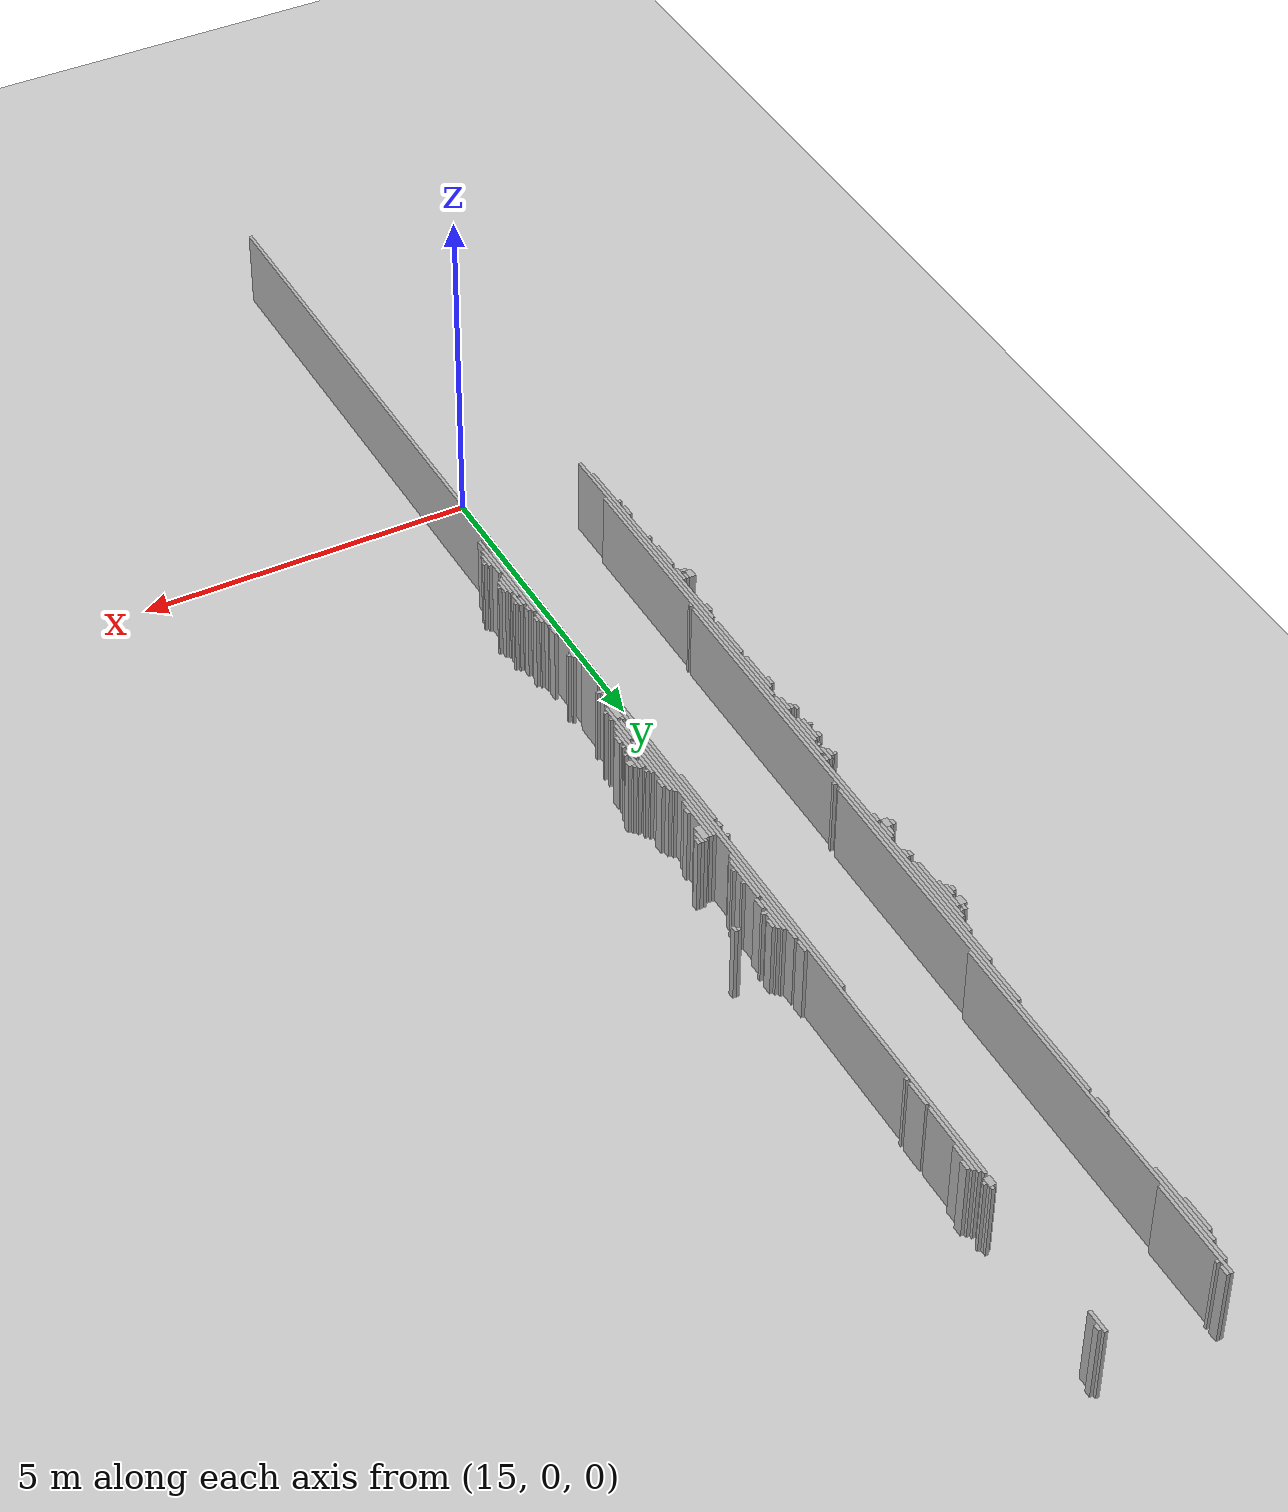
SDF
<sdf version="1.6">
 <world name="d10_floor">
  <include><uri>model://sun</uri></include>
  <include><uri>model://ground_plane</uri></include>
  <model name="d10_walls">
   <static>true</static>
   <link name="w1123">
    <pose>15.600 2.905 0.60 0 0 0</pose>
    <collision name="c"><geometry><box><size>0.050 18.000 1.20</size></box></geometry></collision>
    <visual name="v">
     <geometry><box><size>0.050 18.000 1.20</size></box></geometry>
     <material><ambient>0.6 0.6 0.6 1</ambient><diffuse>0.7 0.7 0.7 1</diffuse></material>
    </visual>
   </link>
   <link name="w1691">
    <pose>13.700 4.005 0.60 0 0 0</pose>
    <collision name="c"><geometry><box><size>0.050 5.600 1.20</size></box></geometry></collision>
    <visual name="v">
     <geometry><box><size>0.050 5.600 1.20</size></box></geometry>
     <material><ambient>0.6 0.6 0.6 1</ambient><diffuse>0.7 0.7 0.7 1</diffuse></material>
    </visual>
   </link>
   <link name="w1783">
    <pose>13.650 3.280 0.60 0 0 0</pose>
    <collision name="c"><geometry><box><size>0.050 3.550 1.20</size></box></geometry></collision>
    <visual name="v">
     <geometry><box><size>0.050 3.550 1.20</size></box></geometry>
     <material><ambient>0.6 0.6 0.6 1</ambient><diffuse>0.7 0.7 0.7 1</diffuse></material>
    </visual>
   </link>
   <link name="w1854">
    <pose>13.750 7.205 0.60 0 0 0</pose>
    <collision name="c"><geometry><box><size>0.050 10.300 1.20</size></box></geometry></collision>
    <visual name="v">
     <geometry><box><size>0.050 10.300 1.20</size></box></geometry>
     <material><ambient>0.6 0.6 0.6 1</ambient><diffuse>0.7 0.7 0.7 1</diffuse></material>
    </visual>
   </link>
   <link name="w1860">
    <pose>15.750 2.955 0.60 0 0 0</pose>
    <collision name="c"><geometry><box><size>0.050 1.700 1.20</size></box></geometry></collision>
    <visual name="v">
     <geometry><box><size>0.050 1.700 1.20</size></box></geometry>
     <material><ambient>0.6 0.6 0.6 1</ambient><diffuse>0.7 0.7 0.7 1</diffuse></material>
    </visual>
   </link>
   <link name="w1869">
    <pose>13.600 2.230 0.60 0 0 0</pose>
    <collision name="c"><geometry><box><size>0.050 0.050 1.20</size></box></geometry></collision>
    <visual name="v">
     <geometry><box><size>0.050 0.050 1.20</size></box></geometry>
     <material><ambient>0.6 0.6 0.6 1</ambient><diffuse>0.7 0.7 0.7 1</diffuse></material>
    </visual>
   </link>
   <link name="w1872">
    <pose>15.800 2.580 0.60 0 0 0</pose>
    <collision name="c"><geometry><box><size>0.050 0.550 1.20</size></box></geometry></collision>
    <visual name="v">
     <geometry><box><size>0.050 0.550 1.20</size></box></geometry>
     <material><ambient>0.6 0.6 0.6 1</ambient><diffuse>0.7 0.7 0.7 1</diffuse></material>
    </visual>
   </link>
   <link name="w1873">
    <pose>13.600 2.455 0.60 0 0 0</pose>
    <collision name="c"><geometry><box><size>0.050 0.200 1.20</size></box></geometry></collision>
    <visual name="v">
     <geometry><box><size>0.050 0.200 1.20</size></box></geometry>
     <material><ambient>0.6 0.6 0.6 1</ambient><diffuse>0.7 0.7 0.7 1</diffuse></material>
    </visual>
   </link>
   <link name="w1874">
    <pose>15.700 3.280 0.60 0 0 0</pose>
    <collision name="c"><geometry><box><size>0.050 1.750 1.20</size></box></geometry></collision>
    <visual name="v">
     <geometry><box><size>0.050 1.750 1.20</size></box></geometry>
     <material><ambient>0.6 0.6 0.6 1</ambient><diffuse>0.7 0.7 0.7 1</diffuse></material>
    </visual>
   </link>
   <link name="w1875">
    <pose>15.850 2.530 0.60 0 0 0</pose>
    <collision name="c"><geometry><box><size>0.050 0.250 1.20</size></box></geometry></collision>
    <visual name="v">
     <geometry><box><size>0.050 0.250 1.20</size></box></geometry>
     <material><ambient>0.6 0.6 0.6 1</ambient><diffuse>0.7 0.7 0.7 1</diffuse></material>
    </visual>
   </link>
   <link name="w1877">
    <pose>15.900 2.580 0.60 0 0 0</pose>
    <collision name="c"><geometry><box><size>0.050 0.050 1.20</size></box></geometry></collision>
    <visual name="v">
     <geometry><box><size>0.050 0.050 1.20</size></box></geometry>
     <material><ambient>0.6 0.6 0.6 1</ambient><diffuse>0.7 0.7 0.7 1</diffuse></material>
    </visual>
   </link>
   <link name="w1881">
    <pose>15.800 3.155 0.60 0 0 0</pose>
    <collision name="c"><geometry><box><size>0.050 0.500 1.20</size></box></geometry></collision>
    <visual name="v">
     <geometry><box><size>0.050 0.500 1.20</size></box></geometry>
     <material><ambient>0.6 0.6 0.6 1</ambient><diffuse>0.7 0.7 0.7 1</diffuse></material>
    </visual>
   </link>
   <link name="w1882">
    <pose>15.850 3.130 0.60 0 0 0</pose>
    <collision name="c"><geometry><box><size>0.050 0.350 1.20</size></box></geometry></collision>
    <visual name="v">
     <geometry><box><size>0.050 0.350 1.20</size></box></geometry>
     <material><ambient>0.6 0.6 0.6 1</ambient><diffuse>0.7 0.7 0.7 1</diffuse></material>
    </visual>
   </link>
   <link name="w1883">
    <pose>15.900 3.130 0.60 0 0 0</pose>
    <collision name="c"><geometry><box><size>0.050 0.250 1.20</size></box></geometry></collision>
    <visual name="v">
     <geometry><box><size>0.050 0.250 1.20</size></box></geometry>
     <material><ambient>0.6 0.6 0.6 1</ambient><diffuse>0.7 0.7 0.7 1</diffuse></material>
    </visual>
   </link>
   <link name="w1884">
    <pose>13.600 3.130 0.60 0 0 0</pose>
    <collision name="c"><geometry><box><size>0.050 0.050 1.20</size></box></geometry></collision>
    <visual name="v">
     <geometry><box><size>0.050 0.050 1.20</size></box></geometry>
     <material><ambient>0.6 0.6 0.6 1</ambient><diffuse>0.7 0.7 0.7 1</diffuse></material>
    </visual>
   </link>
   <link name="w1885">
    <pose>15.950 3.130 0.60 0 0 0</pose>
    <collision name="c"><geometry><box><size>0.050 0.050 1.20</size></box></geometry></collision>
    <visual name="v">
     <geometry><box><size>0.050 0.050 1.20</size></box></geometry>
     <material><ambient>0.6 0.6 0.6 1</ambient><diffuse>0.7 0.7 0.7 1</diffuse></material>
    </visual>
   </link>
   <link name="w1888">
    <pose>13.600 3.580 0.60 0 0 0</pose>
    <collision name="c"><geometry><box><size>0.050 0.450 1.20</size></box></geometry></collision>
    <visual name="v">
     <geometry><box><size>0.050 0.450 1.20</size></box></geometry>
     <material><ambient>0.6 0.6 0.6 1</ambient><diffuse>0.7 0.7 0.7 1</diffuse></material>
    </visual>
   </link>
   <link name="w1889">
    <pose>15.850 3.480 0.60 0 0 0</pose>
    <collision name="c"><geometry><box><size>0.050 0.250 1.20</size></box></geometry></collision>
    <visual name="v">
     <geometry><box><size>0.050 0.250 1.20</size></box></geometry>
     <material><ambient>0.6 0.6 0.6 1</ambient><diffuse>0.7 0.7 0.7 1</diffuse></material>
    </visual>
   </link>
   <link name="w1890">
    <pose>15.800 3.530 0.60 0 0 0</pose>
    <collision name="c"><geometry><box><size>0.050 0.150 1.20</size></box></geometry></collision>
    <visual name="v">
     <geometry><box><size>0.050 0.150 1.20</size></box></geometry>
     <material><ambient>0.6 0.6 0.6 1</ambient><diffuse>0.7 0.7 0.7 1</diffuse></material>
    </visual>
   </link>
   <link name="w1891">
    <pose>15.900 3.530 0.60 0 0 0</pose>
    <collision name="c"><geometry><box><size>0.050 0.050 1.20</size></box></geometry></collision>
    <visual name="v">
     <geometry><box><size>0.050 0.050 1.20</size></box></geometry>
     <material><ambient>0.6 0.6 0.6 1</ambient><diffuse>0.7 0.7 0.7 1</diffuse></material>
    </visual>
   </link>
   <link name="w1894">
    <pose>15.800 3.705 0.60 0 0 0</pose>
    <collision name="c"><geometry><box><size>0.050 0.100 1.20</size></box></geometry></collision>
    <visual name="v">
     <geometry><box><size>0.050 0.100 1.20</size></box></geometry>
     <material><ambient>0.6 0.6 0.6 1</ambient><diffuse>0.7 0.7 0.7 1</diffuse></material>
    </visual>
   </link>
   <link name="w1898">
    <pose>15.750 3.955 0.60 0 0 0</pose>
    <collision name="c"><geometry><box><size>0.050 0.200 1.20</size></box></geometry></collision>
    <visual name="v">
     <geometry><box><size>0.050 0.200 1.20</size></box></geometry>
     <material><ambient>0.6 0.6 0.6 1</ambient><diffuse>0.7 0.7 0.7 1</diffuse></material>
    </visual>
   </link>
   <link name="w1899">
    <pose>13.600 4.030 0.60 0 0 0</pose>
    <collision name="c"><geometry><box><size>0.050 0.250 1.20</size></box></geometry></collision>
    <visual name="v">
     <geometry><box><size>0.050 0.250 1.20</size></box></geometry>
     <material><ambient>0.6 0.6 0.6 1</ambient><diffuse>0.7 0.7 0.7 1</diffuse></material>
    </visual>
   </link>
   <link name="w1900">
    <pose>15.800 3.955 0.60 0 0 0</pose>
    <collision name="c"><geometry><box><size>0.050 0.100 1.20</size></box></geometry></collision>
    <visual name="v">
     <geometry><box><size>0.050 0.100 1.20</size></box></geometry>
     <material><ambient>0.6 0.6 0.6 1</ambient><diffuse>0.7 0.7 0.7 1</diffuse></material>
    </visual>
   </link>
   <link name="w1901">
    <pose>13.525 3.980 0.60 0 0 0</pose>
    <collision name="c"><geometry><box><size>0.100 0.050 1.20</size></box></geometry></collision>
    <visual name="v">
     <geometry><box><size>0.100 0.050 1.20</size></box></geometry>
     <material><ambient>0.6 0.6 0.6 1</ambient><diffuse>0.7 0.7 0.7 1</diffuse></material>
    </visual>
   </link>
   <link name="w1902">
    <pose>13.475 4.080 0.60 0 0 0</pose>
    <collision name="c"><geometry><box><size>0.100 0.150 1.20</size></box></geometry></collision>
    <visual name="v">
     <geometry><box><size>0.100 0.150 1.20</size></box></geometry>
     <material><ambient>0.6 0.6 0.6 1</ambient><diffuse>0.7 0.7 0.7 1</diffuse></material>
    </visual>
   </link>
   <link name="w1903">
    <pose>13.550 4.105 0.60 0 0 0</pose>
    <collision name="c"><geometry><box><size>0.050 0.100 1.20</size></box></geometry></collision>
    <visual name="v">
     <geometry><box><size>0.050 0.100 1.20</size></box></geometry>
     <material><ambient>0.6 0.6 0.6 1</ambient><diffuse>0.7 0.7 0.7 1</diffuse></material>
    </visual>
   </link>
   <link name="w1908">
    <pose>15.700 4.280 0.60 0 0 0</pose>
    <collision name="c"><geometry><box><size>0.050 0.150 1.20</size></box></geometry></collision>
    <visual name="v">
     <geometry><box><size>0.050 0.150 1.20</size></box></geometry>
     <material><ambient>0.6 0.6 0.6 1</ambient><diffuse>0.7 0.7 0.7 1</diffuse></material>
    </visual>
   </link>
   <link name="w1914">
    <pose>13.800 4.680 0.60 0 0 0</pose>
    <collision name="c"><geometry><box><size>0.050 0.050 1.20</size></box></geometry></collision>
    <visual name="v">
     <geometry><box><size>0.050 0.050 1.20</size></box></geometry>
     <material><ambient>0.6 0.6 0.6 1</ambient><diffuse>0.7 0.7 0.7 1</diffuse></material>
    </visual>
   </link>
   <link name="w1918">
    <pose>13.600 4.830 0.60 0 0 0</pose>
    <collision name="c"><geometry><box><size>0.050 0.150 1.20</size></box></geometry></collision>
    <visual name="v">
     <geometry><box><size>0.050 0.150 1.20</size></box></geometry>
     <material><ambient>0.6 0.6 0.6 1</ambient><diffuse>0.7 0.7 0.7 1</diffuse></material>
    </visual>
   </link>
   <link name="w1919">
    <pose>13.800 8.930 0.60 0 0 0</pose>
    <collision name="c"><geometry><box><size>0.050 8.350 1.20</size></box></geometry></collision>
    <visual name="v">
     <geometry><box><size>0.050 8.350 1.20</size></box></geometry>
     <material><ambient>0.6 0.6 0.6 1</ambient><diffuse>0.7 0.7 0.7 1</diffuse></material>
    </visual>
   </link>
   <link name="w1920">
    <pose>15.700 4.830 0.60 0 0 0</pose>
    <collision name="c"><geometry><box><size>0.050 0.150 1.20</size></box></geometry></collision>
    <visual name="v">
     <geometry><box><size>0.050 0.150 1.20</size></box></geometry>
     <material><ambient>0.6 0.6 0.6 1</ambient><diffuse>0.7 0.7 0.7 1</diffuse></material>
    </visual>
   </link>
   <link name="w1922">
    <pose>15.750 4.830 0.60 0 0 0</pose>
    <collision name="c"><geometry><box><size>0.050 0.050 1.20</size></box></geometry></collision>
    <visual name="v">
     <geometry><box><size>0.050 0.050 1.20</size></box></geometry>
     <material><ambient>0.6 0.6 0.6 1</ambient><diffuse>0.7 0.7 0.7 1</diffuse></material>
    </visual>
   </link>
   <link name="w1924">
    <pose>15.650 5.280 0.60 0 0 0</pose>
    <collision name="c"><geometry><box><size>0.050 0.450 1.20</size></box></geometry></collision>
    <visual name="v">
     <geometry><box><size>0.050 0.450 1.20</size></box></geometry>
     <material><ambient>0.6 0.6 0.6 1</ambient><diffuse>0.7 0.7 0.7 1</diffuse></material>
    </visual>
   </link>
   <link name="w1927">
    <pose>13.650 5.505 0.60 0 0 0</pose>
    <collision name="c"><geometry><box><size>0.050 0.700 1.20</size></box></geometry></collision>
    <visual name="v">
     <geometry><box><size>0.050 0.700 1.20</size></box></geometry>
     <material><ambient>0.6 0.6 0.6 1</ambient><diffuse>0.7 0.7 0.7 1</diffuse></material>
    </visual>
   </link>
   <link name="w1933">
    <pose>15.650 10.430 0.60 0 0 0</pose>
    <collision name="c"><geometry><box><size>0.050 9.750 1.20</size></box></geometry></collision>
    <visual name="v">
     <geometry><box><size>0.050 9.750 1.20</size></box></geometry>
     <material><ambient>0.6 0.6 0.6 1</ambient><diffuse>0.7 0.7 0.7 1</diffuse></material>
    </visual>
   </link>
   <link name="w1937">
    <pose>15.725 5.680 0.60 0 0 0</pose>
    <collision name="c"><geometry><box><size>0.100 0.050 1.20</size></box></geometry></collision>
    <visual name="v">
     <geometry><box><size>0.100 0.050 1.20</size></box></geometry>
     <material><ambient>0.6 0.6 0.6 1</ambient><diffuse>0.7 0.7 0.7 1</diffuse></material>
    </visual>
   </link>
   <link name="w1939">
    <pose>15.700 5.780 0.60 0 0 0</pose>
    <collision name="c"><geometry><box><size>0.050 0.150 1.20</size></box></geometry></collision>
    <visual name="v">
     <geometry><box><size>0.050 0.150 1.20</size></box></geometry>
     <material><ambient>0.6 0.6 0.6 1</ambient><diffuse>0.7 0.7 0.7 1</diffuse></material>
    </visual>
   </link>
   <link name="w1943">
    <pose>15.725 6.080 0.60 0 0 0</pose>
    <collision name="c"><geometry><box><size>0.100 0.350 1.20</size></box></geometry></collision>
    <visual name="v">
     <geometry><box><size>0.100 0.350 1.20</size></box></geometry>
     <material><ambient>0.6 0.6 0.6 1</ambient><diffuse>0.7 0.7 0.7 1</diffuse></material>
    </visual>
   </link>
   <link name="w1945">
    <pose>13.650 6.305 0.60 0 0 0</pose>
    <collision name="c"><geometry><box><size>0.050 0.700 1.20</size></box></geometry></collision>
    <visual name="v">
     <geometry><box><size>0.050 0.700 1.20</size></box></geometry>
     <material><ambient>0.6 0.6 0.6 1</ambient><diffuse>0.7 0.7 0.7 1</diffuse></material>
    </visual>
   </link>
   <link name="w1946">
    <pose>15.800 6.355 0.60 0 0 0</pose>
    <collision name="c"><geometry><box><size>0.050 0.700 1.20</size></box></geometry></collision>
    <visual name="v">
     <geometry><box><size>0.050 0.700 1.20</size></box></geometry>
     <material><ambient>0.6 0.6 0.6 1</ambient><diffuse>0.7 0.7 0.7 1</diffuse></material>
    </visual>
   </link>
   <link name="w1948">
    <pose>15.850 6.080 0.60 0 0 0</pose>
    <collision name="c"><geometry><box><size>0.050 0.050 1.20</size></box></geometry></collision>
    <visual name="v">
     <geometry><box><size>0.050 0.050 1.20</size></box></geometry>
     <material><ambient>0.6 0.6 0.6 1</ambient><diffuse>0.7 0.7 0.7 1</diffuse></material>
    </visual>
   </link>
   <link name="w1950">
    <pose>15.850 6.230 0.60 0 0 0</pose>
    <collision name="c"><geometry><box><size>0.050 0.050 1.20</size></box></geometry></collision>
    <visual name="v">
     <geometry><box><size>0.050 0.050 1.20</size></box></geometry>
     <material><ambient>0.6 0.6 0.6 1</ambient><diffuse>0.7 0.7 0.7 1</diffuse></material>
    </visual>
   </link>
   <link name="w1952">
    <pose>15.700 6.280 0.60 0 0 0</pose>
    <collision name="c"><geometry><box><size>0.050 0.050 1.20</size></box></geometry></collision>
    <visual name="v">
     <geometry><box><size>0.050 0.050 1.20</size></box></geometry>
     <material><ambient>0.6 0.6 0.6 1</ambient><diffuse>0.7 0.7 0.7 1</diffuse></material>
    </visual>
   </link>
   <link name="w1954">
    <pose>15.750 7.080 0.60 0 0 0</pose>
    <collision name="c"><geometry><box><size>0.050 1.550 1.20</size></box></geometry></collision>
    <visual name="v">
     <geometry><box><size>0.050 1.550 1.20</size></box></geometry>
     <material><ambient>0.6 0.6 0.6 1</ambient><diffuse>0.7 0.7 0.7 1</diffuse></material>
    </visual>
   </link>
   <link name="w1955">
    <pose>15.700 7.580 0.60 0 0 0</pose>
    <collision name="c"><geometry><box><size>0.050 2.450 1.20</size></box></geometry></collision>
    <visual name="v">
     <geometry><box><size>0.050 2.450 1.20</size></box></geometry>
     <material><ambient>0.6 0.6 0.6 1</ambient><diffuse>0.7 0.7 0.7 1</diffuse></material>
    </visual>
   </link>
   <link name="w1956">
    <pose>15.850 6.880 0.60 0 0 0</pose>
    <collision name="c"><geometry><box><size>0.050 1.050 1.20</size></box></geometry></collision>
    <visual name="v">
     <geometry><box><size>0.050 1.050 1.20</size></box></geometry>
     <material><ambient>0.6 0.6 0.6 1</ambient><diffuse>0.7 0.7 0.7 1</diffuse></material>
    </visual>
   </link>
   <link name="w1960">
    <pose>13.600 6.530 0.60 0 0 0</pose>
    <collision name="c"><geometry><box><size>0.050 0.150 1.20</size></box></geometry></collision>
    <visual name="v">
     <geometry><box><size>0.050 0.150 1.20</size></box></geometry>
     <material><ambient>0.6 0.6 0.6 1</ambient><diffuse>0.7 0.7 0.7 1</diffuse></material>
    </visual>
   </link>
   <link name="w1961">
    <pose>15.900 6.755 0.60 0 0 0</pose>
    <collision name="c"><geometry><box><size>0.050 0.600 1.20</size></box></geometry></collision>
    <visual name="v">
     <geometry><box><size>0.050 0.600 1.20</size></box></geometry>
     <material><ambient>0.6 0.6 0.6 1</ambient><diffuse>0.7 0.7 0.7 1</diffuse></material>
    </visual>
   </link>
   <link name="w1962">
    <pose>15.950 6.630 0.60 0 0 0</pose>
    <collision name="c"><geometry><box><size>0.050 0.150 1.20</size></box></geometry></collision>
    <visual name="v">
     <geometry><box><size>0.050 0.150 1.20</size></box></geometry>
     <material><ambient>0.6 0.6 0.6 1</ambient><diffuse>0.7 0.7 0.7 1</diffuse></material>
    </visual>
   </link>
   <link name="w1964">
    <pose>15.800 6.780 0.60 0 0 0</pose>
    <collision name="c"><geometry><box><size>0.050 0.050 1.20</size></box></geometry></collision>
    <visual name="v">
     <geometry><box><size>0.050 0.050 1.20</size></box></geometry>
     <material><ambient>0.6 0.6 0.6 1</ambient><diffuse>0.7 0.7 0.7 1</diffuse></material>
    </visual>
   </link>
   <link name="w1965">
    <pose>15.950 6.780 0.60 0 0 0</pose>
    <collision name="c"><geometry><box><size>0.050 0.050 1.20</size></box></geometry></collision>
    <visual name="v">
     <geometry><box><size>0.050 0.050 1.20</size></box></geometry>
     <material><ambient>0.6 0.6 0.6 1</ambient><diffuse>0.7 0.7 0.7 1</diffuse></material>
    </visual>
   </link>
   <link name="w1968">
    <pose>13.700 7.480 0.60 0 0 0</pose>
    <collision name="c"><geometry><box><size>0.050 1.250 1.20</size></box></geometry></collision>
    <visual name="v">
     <geometry><box><size>0.050 1.250 1.20</size></box></geometry>
     <material><ambient>0.6 0.6 0.6 1</ambient><diffuse>0.7 0.7 0.7 1</diffuse></material>
    </visual>
   </link>
   <link name="w1969">
    <pose>15.800 7.330 0.60 0 0 0</pose>
    <collision name="c"><geometry><box><size>0.050 0.950 1.20</size></box></geometry></collision>
    <visual name="v">
     <geometry><box><size>0.050 0.950 1.20</size></box></geometry>
     <material><ambient>0.6 0.6 0.6 1</ambient><diffuse>0.7 0.7 0.7 1</diffuse></material>
    </visual>
   </link>
   <link name="w1970">
    <pose>15.950 7.055 0.60 0 0 0</pose>
    <collision name="c"><geometry><box><size>0.050 0.400 1.20</size></box></geometry></collision>
    <visual name="v">
     <geometry><box><size>0.050 0.400 1.20</size></box></geometry>
     <material><ambient>0.6 0.6 0.6 1</ambient><diffuse>0.7 0.7 0.7 1</diffuse></material>
    </visual>
   </link>
   <link name="w1971">
    <pose>13.650 7.030 0.60 0 0 0</pose>
    <collision name="c"><geometry><box><size>0.050 0.250 1.20</size></box></geometry></collision>
    <visual name="v">
     <geometry><box><size>0.050 0.250 1.20</size></box></geometry>
     <material><ambient>0.6 0.6 0.6 1</ambient><diffuse>0.7 0.7 0.7 1</diffuse></material>
    </visual>
   </link>
   <link name="w1972">
    <pose>16.000 6.930 0.60 0 0 0</pose>
    <collision name="c"><geometry><box><size>0.050 0.050 1.20</size></box></geometry></collision>
    <visual name="v">
     <geometry><box><size>0.050 0.050 1.20</size></box></geometry>
     <material><ambient>0.6 0.6 0.6 1</ambient><diffuse>0.7 0.7 0.7 1</diffuse></material>
    </visual>
   </link>
   <link name="w1974">
    <pose>13.600 7.105 0.60 0 0 0</pose>
    <collision name="c"><geometry><box><size>0.050 0.100 1.20</size></box></geometry></collision>
    <visual name="v">
     <geometry><box><size>0.050 0.100 1.20</size></box></geometry>
     <material><ambient>0.6 0.6 0.6 1</ambient><diffuse>0.7 0.7 0.7 1</diffuse></material>
    </visual>
   </link>
   <link name="w1975">
    <pose>16.025 7.105 0.60 0 0 0</pose>
    <collision name="c"><geometry><box><size>0.100 0.100 1.20</size></box></geometry></collision>
    <visual name="v">
     <geometry><box><size>0.100 0.100 1.20</size></box></geometry>
     <material><ambient>0.6 0.6 0.6 1</ambient><diffuse>0.7 0.7 0.7 1</diffuse></material>
    </visual>
   </link>
   <link name="w1977">
    <pose>13.550 7.155 0.60 0 0 0</pose>
    <collision name="c"><geometry><box><size>0.050 0.100 1.20</size></box></geometry></collision>
    <visual name="v">
     <geometry><box><size>0.050 0.100 1.20</size></box></geometry>
     <material><ambient>0.6 0.6 0.6 1</ambient><diffuse>0.7 0.7 0.7 1</diffuse></material>
    </visual>
   </link>
   <link name="w1978">
    <pose>15.900 7.180 0.60 0 0 0</pose>
    <collision name="c"><geometry><box><size>0.050 0.150 1.20</size></box></geometry></collision>
    <visual name="v">
     <geometry><box><size>0.050 0.150 1.20</size></box></geometry>
     <material><ambient>0.6 0.6 0.6 1</ambient><diffuse>0.7 0.7 0.7 1</diffuse></material>
    </visual>
   </link>
   <link name="w1980">
    <pose>16.000 7.180 0.60 0 0 0</pose>
    <collision name="c"><geometry><box><size>0.050 0.050 1.20</size></box></geometry></collision>
    <visual name="v">
     <geometry><box><size>0.050 0.050 1.20</size></box></geometry>
     <material><ambient>0.6 0.6 0.6 1</ambient><diffuse>0.7 0.7 0.7 1</diffuse></material>
    </visual>
   </link>
   <link name="w1982">
    <pose>15.900 7.330 0.60 0 0 0</pose>
    <collision name="c"><geometry><box><size>0.050 0.050 1.20</size></box></geometry></collision>
    <visual name="v">
     <geometry><box><size>0.050 0.050 1.20</size></box></geometry>
     <material><ambient>0.6 0.6 0.6 1</ambient><diffuse>0.7 0.7 0.7 1</diffuse></material>
    </visual>
   </link>
   <link name="w1983">
    <pose>13.650 7.605 0.60 0 0 0</pose>
    <collision name="c"><geometry><box><size>0.050 0.500 1.20</size></box></geometry></collision>
    <visual name="v">
     <geometry><box><size>0.050 0.500 1.20</size></box></geometry>
     <material><ambient>0.6 0.6 0.6 1</ambient><diffuse>0.7 0.7 0.7 1</diffuse></material>
    </visual>
   </link>
   <link name="w1984">
    <pose>13.600 7.605 0.60 0 0 0</pose>
    <collision name="c"><geometry><box><size>0.050 0.400 1.20</size></box></geometry></collision>
    <visual name="v">
     <geometry><box><size>0.050 0.400 1.20</size></box></geometry>
     <material><ambient>0.6 0.6 0.6 1</ambient><diffuse>0.7 0.7 0.7 1</diffuse></material>
    </visual>
   </link>
   <link name="w1985">
    <pose>13.550 7.530 0.60 0 0 0</pose>
    <collision name="c"><geometry><box><size>0.050 0.050 1.20</size></box></geometry></collision>
    <visual name="v">
     <geometry><box><size>0.050 0.050 1.20</size></box></geometry>
     <material><ambient>0.6 0.6 0.6 1</ambient><diffuse>0.7 0.7 0.7 1</diffuse></material>
    </visual>
   </link>
   <link name="w1987">
    <pose>15.850 7.630 0.60 0 0 0</pose>
    <collision name="c"><geometry><box><size>0.050 0.150 1.20</size></box></geometry></collision>
    <visual name="v">
     <geometry><box><size>0.050 0.150 1.20</size></box></geometry>
     <material><ambient>0.6 0.6 0.6 1</ambient><diffuse>0.7 0.7 0.7 1</diffuse></material>
    </visual>
   </link>
   <link name="w1988">
    <pose>15.550 8.080 0.60 0 0 0</pose>
    <collision name="c"><geometry><box><size>0.050 0.950 1.20</size></box></geometry></collision>
    <visual name="v">
     <geometry><box><size>0.050 0.950 1.20</size></box></geometry>
     <material><ambient>0.6 0.6 0.6 1</ambient><diffuse>0.7 0.7 0.7 1</diffuse></material>
    </visual>
   </link>
   <link name="w1989">
    <pose>13.550 7.755 0.60 0 0 0</pose>
    <collision name="c"><geometry><box><size>0.050 0.100 1.20</size></box></geometry></collision>
    <visual name="v">
     <geometry><box><size>0.050 0.100 1.20</size></box></geometry>
     <material><ambient>0.6 0.6 0.6 1</ambient><diffuse>0.7 0.7 0.7 1</diffuse></material>
    </visual>
   </link>
   <link name="w1994">
    <pose>13.650 7.930 0.60 0 0 0</pose>
    <collision name="c"><geometry><box><size>0.050 0.050 1.20</size></box></geometry></collision>
    <visual name="v">
     <geometry><box><size>0.050 0.050 1.20</size></box></geometry>
     <material><ambient>0.6 0.6 0.6 1</ambient><diffuse>0.7 0.7 0.7 1</diffuse></material>
    </visual>
   </link>
   <link name="w1997">
    <pose>13.650 8.130 0.60 0 0 0</pose>
    <collision name="c"><geometry><box><size>0.050 0.250 1.20</size></box></geometry></collision>
    <visual name="v">
     <geometry><box><size>0.050 0.250 1.20</size></box></geometry>
     <material><ambient>0.6 0.6 0.6 1</ambient><diffuse>0.7 0.7 0.7 1</diffuse></material>
    </visual>
   </link>
   <link name="w1998">
    <pose>13.600 8.130 0.60 0 0 0</pose>
    <collision name="c"><geometry><box><size>0.050 0.150 1.20</size></box></geometry></collision>
    <visual name="v">
     <geometry><box><size>0.050 0.150 1.20</size></box></geometry>
     <material><ambient>0.6 0.6 0.6 1</ambient><diffuse>0.7 0.7 0.7 1</diffuse></material>
    </visual>
   </link>
   <link name="w1999">
    <pose>15.750 8.430 0.60 0 0 0</pose>
    <collision name="c"><geometry><box><size>0.050 0.750 1.20</size></box></geometry></collision>
    <visual name="v">
     <geometry><box><size>0.050 0.750 1.20</size></box></geometry>
     <material><ambient>0.6 0.6 0.6 1</ambient><diffuse>0.7 0.7 0.7 1</diffuse></material>
    </visual>
   </link>
   <link name="w2000">
    <pose>13.550 8.180 0.60 0 0 0</pose>
    <collision name="c"><geometry><box><size>0.050 0.050 1.20</size></box></geometry></collision>
    <visual name="v">
     <geometry><box><size>0.050 0.050 1.20</size></box></geometry>
     <material><ambient>0.6 0.6 0.6 1</ambient><diffuse>0.7 0.7 0.7 1</diffuse></material>
    </visual>
   </link>
   <link name="w2001">
    <pose>13.700 8.205 0.60 0 0 0</pose>
    <collision name="c"><geometry><box><size>0.050 0.100 1.20</size></box></geometry></collision>
    <visual name="v">
     <geometry><box><size>0.050 0.100 1.20</size></box></geometry>
     <material><ambient>0.6 0.6 0.6 1</ambient><diffuse>0.7 0.7 0.7 1</diffuse></material>
    </visual>
   </link>
   <link name="w2002">
    <pose>15.800 8.255 0.60 0 0 0</pose>
    <collision name="c"><geometry><box><size>0.050 0.100 1.20</size></box></geometry></collision>
    <visual name="v">
     <geometry><box><size>0.050 0.100 1.20</size></box></geometry>
     <material><ambient>0.6 0.6 0.6 1</ambient><diffuse>0.7 0.7 0.7 1</diffuse></material>
    </visual>
   </link>
   <link name="w2003">
    <pose>15.825 8.680 0.60 0 0 0</pose>
    <collision name="c"><geometry><box><size>0.100 0.250 1.20</size></box></geometry></collision>
    <visual name="v">
     <geometry><box><size>0.100 0.250 1.20</size></box></geometry>
     <material><ambient>0.6 0.6 0.6 1</ambient><diffuse>0.7 0.7 0.7 1</diffuse></material>
    </visual>
   </link>
   <link name="w2004">
    <pose>15.550 8.655 0.60 0 0 0</pose>
    <collision name="c"><geometry><box><size>0.050 0.100 1.20</size></box></geometry></collision>
    <visual name="v">
     <geometry><box><size>0.050 0.100 1.20</size></box></geometry>
     <material><ambient>0.6 0.6 0.6 1</ambient><diffuse>0.7 0.7 0.7 1</diffuse></material>
    </visual>
   </link>
   <link name="w2005">
    <pose>13.850 8.680 0.60 0 0 0</pose>
    <collision name="c"><geometry><box><size>0.050 0.050 1.20</size></box></geometry></collision>
    <visual name="v">
     <geometry><box><size>0.050 0.050 1.20</size></box></geometry>
     <material><ambient>0.6 0.6 0.6 1</ambient><diffuse>0.7 0.7 0.7 1</diffuse></material>
    </visual>
   </link>
   <link name="w2006">
    <pose>15.900 8.755 0.60 0 0 0</pose>
    <collision name="c"><geometry><box><size>0.050 0.200 1.20</size></box></geometry></collision>
    <visual name="v">
     <geometry><box><size>0.050 0.200 1.20</size></box></geometry>
     <material><ambient>0.6 0.6 0.6 1</ambient><diffuse>0.7 0.7 0.7 1</diffuse></material>
    </visual>
   </link>
   <link name="w2007">
    <pose>15.950 8.805 0.60 0 0 0</pose>
    <collision name="c"><geometry><box><size>0.050 0.100 1.20</size></box></geometry></collision>
    <visual name="v">
     <geometry><box><size>0.050 0.100 1.20</size></box></geometry>
     <material><ambient>0.6 0.6 0.6 1</ambient><diffuse>0.7 0.7 0.7 1</diffuse></material>
    </visual>
   </link>
   <link name="w2008">
    <pose>13.850 11.780 0.60 0 0 0</pose>
    <collision name="c"><geometry><box><size>0.050 5.950 1.20</size></box></geometry></collision>
    <visual name="v">
     <geometry><box><size>0.050 5.950 1.20</size></box></geometry>
     <material><ambient>0.6 0.6 0.6 1</ambient><diffuse>0.7 0.7 0.7 1</diffuse></material>
    </visual>
   </link>
   <link name="w2009">
    <pose>15.850 8.830 0.60 0 0 0</pose>
    <collision name="c"><geometry><box><size>0.050 0.050 1.20</size></box></geometry></collision>
    <visual name="v">
     <geometry><box><size>0.050 0.050 1.20</size></box></geometry>
     <material><ambient>0.6 0.6 0.6 1</ambient><diffuse>0.7 0.7 0.7 1</diffuse></material>
    </visual>
   </link>
   <link name="w2010">
    <pose>15.550 8.880 0.60 0 0 0</pose>
    <collision name="c"><geometry><box><size>0.050 0.050 1.20</size></box></geometry></collision>
    <visual name="v">
     <geometry><box><size>0.050 0.050 1.20</size></box></geometry>
     <material><ambient>0.6 0.6 0.6 1</ambient><diffuse>0.7 0.7 0.7 1</diffuse></material>
    </visual>
   </link>
   <link name="w2011">
    <pose>15.700 10.055 0.60 0 0 0</pose>
    <collision name="c"><geometry><box><size>0.050 1.700 1.20</size></box></geometry></collision>
    <visual name="v">
     <geometry><box><size>0.050 1.700 1.20</size></box></geometry>
     <material><ambient>0.6 0.6 0.6 1</ambient><diffuse>0.7 0.7 0.7 1</diffuse></material>
    </visual>
   </link>
   <link name="w2012">
    <pose>15.750 9.680 0.60 0 0 0</pose>
    <collision name="c"><geometry><box><size>0.050 0.750 1.20</size></box></geometry></collision>
    <visual name="v">
     <geometry><box><size>0.050 0.750 1.20</size></box></geometry>
     <material><ambient>0.6 0.6 0.6 1</ambient><diffuse>0.7 0.7 0.7 1</diffuse></material>
    </visual>
   </link>
   <link name="w2013">
    <pose>13.700 9.480 0.60 0 0 0</pose>
    <collision name="c"><geometry><box><size>0.050 0.150 1.20</size></box></geometry></collision>
    <visual name="v">
     <geometry><box><size>0.050 0.150 1.20</size></box></geometry>
     <material><ambient>0.6 0.6 0.6 1</ambient><diffuse>0.7 0.7 0.7 1</diffuse></material>
    </visual>
   </link>
   <link name="w2014">
    <pose>15.800 9.480 0.60 0 0 0</pose>
    <collision name="c"><geometry><box><size>0.050 0.050 1.20</size></box></geometry></collision>
    <visual name="v">
     <geometry><box><size>0.050 0.050 1.20</size></box></geometry>
     <material><ambient>0.6 0.6 0.6 1</ambient><diffuse>0.7 0.7 0.7 1</diffuse></material>
    </visual>
   </link>
   <link name="w2015">
    <pose>13.625 9.630 0.60 0 0 0</pose>
    <collision name="c"><geometry><box><size>0.100 0.150 1.20</size></box></geometry></collision>
    <visual name="v">
     <geometry><box><size>0.100 0.150 1.20</size></box></geometry>
     <material><ambient>0.6 0.6 0.6 1</ambient><diffuse>0.7 0.7 0.7 1</diffuse></material>
    </visual>
   </link>
   <link name="w2016">
    <pose>13.550 9.655 0.60 0 0 0</pose>
    <collision name="c"><geometry><box><size>0.050 0.100 1.20</size></box></geometry></collision>
    <visual name="v">
     <geometry><box><size>0.050 0.100 1.20</size></box></geometry>
     <material><ambient>0.6 0.6 0.6 1</ambient><diffuse>0.7 0.7 0.7 1</diffuse></material>
    </visual>
   </link>
   <link name="w2017">
    <pose>13.700 9.755 0.60 0 0 0</pose>
    <collision name="c"><geometry><box><size>0.050 0.300 1.20</size></box></geometry></collision>
    <visual name="v">
     <geometry><box><size>0.050 0.300 1.20</size></box></geometry>
     <material><ambient>0.6 0.6 0.6 1</ambient><diffuse>0.7 0.7 0.7 1</diffuse></material>
    </visual>
   </link>
   <link name="w2018">
    <pose>13.650 9.780 0.60 0 0 0</pose>
    <collision name="c"><geometry><box><size>0.050 0.150 1.20</size></box></geometry></collision>
    <visual name="v">
     <geometry><box><size>0.050 0.150 1.20</size></box></geometry>
     <material><ambient>0.6 0.6 0.6 1</ambient><diffuse>0.7 0.7 0.7 1</diffuse></material>
    </visual>
   </link>
   <link name="w2019">
    <pose>15.800 9.730 0.60 0 0 0</pose>
    <collision name="c"><geometry><box><size>0.050 0.050 1.20</size></box></geometry></collision>
    <visual name="v">
     <geometry><box><size>0.050 0.050 1.20</size></box></geometry>
     <material><ambient>0.6 0.6 0.6 1</ambient><diffuse>0.7 0.7 0.7 1</diffuse></material>
    </visual>
   </link>
   <link name="w2020">
    <pose>15.800 10.155 0.60 0 0 0</pose>
    <collision name="c"><geometry><box><size>0.050 0.200 1.20</size></box></geometry></collision>
    <visual name="v">
     <geometry><box><size>0.050 0.200 1.20</size></box></geometry>
     <material><ambient>0.6 0.6 0.6 1</ambient><diffuse>0.7 0.7 0.7 1</diffuse></material>
    </visual>
   </link>
   <link name="w2021">
    <pose>15.750 10.405 0.60 0 0 0</pose>
    <collision name="c"><geometry><box><size>0.050 0.600 1.20</size></box></geometry></collision>
    <visual name="v">
     <geometry><box><size>0.050 0.600 1.20</size></box></geometry>
     <material><ambient>0.6 0.6 0.6 1</ambient><diffuse>0.7 0.7 0.7 1</diffuse></material>
    </visual>
   </link>
   <link name="w2022">
    <pose>13.700 10.230 0.60 0 0 0</pose>
    <collision name="c"><geometry><box><size>0.050 0.150 1.20</size></box></geometry></collision>
    <visual name="v">
     <geometry><box><size>0.050 0.150 1.20</size></box></geometry>
     <material><ambient>0.6 0.6 0.6 1</ambient><diffuse>0.7 0.7 0.7 1</diffuse></material>
    </visual>
   </link>
   <link name="w2023">
    <pose>13.650 10.255 0.60 0 0 0</pose>
    <collision name="c"><geometry><box><size>0.050 0.100 1.20</size></box></geometry></collision>
    <visual name="v">
     <geometry><box><size>0.050 0.100 1.20</size></box></geometry>
     <material><ambient>0.6 0.6 0.6 1</ambient><diffuse>0.7 0.7 0.7 1</diffuse></material>
    </visual>
   </link>
   <link name="w2024">
    <pose>15.825 10.330 0.60 0 0 0</pose>
    <collision name="c"><geometry><box><size>0.100 0.050 1.20</size></box></geometry></collision>
    <visual name="v">
     <geometry><box><size>0.100 0.050 1.20</size></box></geometry>
     <material><ambient>0.6 0.6 0.6 1</ambient><diffuse>0.7 0.7 0.7 1</diffuse></material>
    </visual>
   </link>
   <link name="w2025">
    <pose>15.800 10.505 0.60 0 0 0</pose>
    <collision name="c"><geometry><box><size>0.050 0.300 1.20</size></box></geometry></collision>
    <visual name="v">
     <geometry><box><size>0.050 0.300 1.20</size></box></geometry>
     <material><ambient>0.6 0.6 0.6 1</ambient><diffuse>0.7 0.7 0.7 1</diffuse></material>
    </visual>
   </link>
   <link name="w2026">
    <pose>16.300 10.405 0.60 0 0 0</pose>
    <collision name="c"><geometry><box><size>0.050 0.100 1.20</size></box></geometry></collision>
    <visual name="v">
     <geometry><box><size>0.050 0.100 1.20</size></box></geometry>
     <material><ambient>0.6 0.6 0.6 1</ambient><diffuse>0.7 0.7 0.7 1</diffuse></material>
    </visual>
   </link>
   <link name="w2027">
    <pose>13.700 11.105 0.60 0 0 0</pose>
    <collision name="c"><geometry><box><size>0.050 1.400 1.20</size></box></geometry></collision>
    <visual name="v">
     <geometry><box><size>0.050 1.400 1.20</size></box></geometry>
     <material><ambient>0.6 0.6 0.6 1</ambient><diffuse>0.7 0.7 0.7 1</diffuse></material>
    </visual>
   </link>
   <link name="w2028">
    <pose>16.250 10.430 0.60 0 0 0</pose>
    <collision name="c"><geometry><box><size>0.050 0.050 1.20</size></box></geometry></collision>
    <visual name="v">
     <geometry><box><size>0.050 0.050 1.20</size></box></geometry>
     <material><ambient>0.6 0.6 0.6 1</ambient><diffuse>0.7 0.7 0.7 1</diffuse></material>
    </visual>
   </link>
   <link name="w2029">
    <pose>13.650 11.005 0.60 0 0 0</pose>
    <collision name="c"><geometry><box><size>0.050 1.100 1.20</size></box></geometry></collision>
    <visual name="v">
     <geometry><box><size>0.050 1.100 1.20</size></box></geometry>
     <material><ambient>0.6 0.6 0.6 1</ambient><diffuse>0.7 0.7 0.7 1</diffuse></material>
    </visual>
   </link>
   <link name="w2030">
    <pose>15.850 10.530 0.60 0 0 0</pose>
    <collision name="c"><geometry><box><size>0.050 0.150 1.20</size></box></geometry></collision>
    <visual name="v">
     <geometry><box><size>0.050 0.150 1.20</size></box></geometry>
     <material><ambient>0.6 0.6 0.6 1</ambient><diffuse>0.7 0.7 0.7 1</diffuse></material>
    </visual>
   </link>
   <link name="w2031">
    <pose>13.600 11.105 0.60 0 0 0</pose>
    <collision name="c"><geometry><box><size>0.050 0.500 1.20</size></box></geometry></collision>
    <visual name="v">
     <geometry><box><size>0.050 0.500 1.20</size></box></geometry>
     <material><ambient>0.6 0.6 0.6 1</ambient><diffuse>0.7 0.7 0.7 1</diffuse></material>
    </visual>
   </link>
   <link name="w2032">
    <pose>13.550 11.055 0.60 0 0 0</pose>
    <collision name="c"><geometry><box><size>0.050 0.200 1.20</size></box></geometry></collision>
    <visual name="v">
     <geometry><box><size>0.050 0.200 1.20</size></box></geometry>
     <material><ambient>0.6 0.6 0.6 1</ambient><diffuse>0.7 0.7 0.7 1</diffuse></material>
    </visual>
   </link>
   <link name="w2033">
    <pose>15.700 11.055 0.60 0 0 0</pose>
    <collision name="c"><geometry><box><size>0.050 0.200 1.20</size></box></geometry></collision>
    <visual name="v">
     <geometry><box><size>0.050 0.200 1.20</size></box></geometry>
     <material><ambient>0.6 0.6 0.6 1</ambient><diffuse>0.7 0.7 0.7 1</diffuse></material>
    </visual>
   </link>
   <link name="w2034">
    <pose>13.500 11.055 0.60 0 0 0</pose>
    <collision name="c"><geometry><box><size>0.050 0.100 1.20</size></box></geometry></collision>
    <visual name="v">
     <geometry><box><size>0.050 0.100 1.20</size></box></geometry>
     <material><ambient>0.6 0.6 0.6 1</ambient><diffuse>0.7 0.7 0.7 1</diffuse></material>
    </visual>
   </link>
   <link name="w2035">
    <pose>13.525 11.280 0.60 0 0 0</pose>
    <collision name="c"><geometry><box><size>0.100 0.150 1.20</size></box></geometry></collision>
    <visual name="v">
     <geometry><box><size>0.100 0.150 1.20</size></box></geometry>
     <material><ambient>0.6 0.6 0.6 1</ambient><diffuse>0.7 0.7 0.7 1</diffuse></material>
    </visual>
   </link>
   <link name="w2036">
    <pose>13.550 11.405 0.60 0 0 0</pose>
    <collision name="c"><geometry><box><size>0.050 0.100 1.20</size></box></geometry></collision>
    <visual name="v">
     <geometry><box><size>0.050 0.100 1.20</size></box></geometry>
     <material><ambient>0.6 0.6 0.6 1</ambient><diffuse>0.7 0.7 0.7 1</diffuse></material>
    </visual>
   </link>
   <link name="w2037">
    <pose>13.600 11.430 0.60 0 0 0</pose>
    <collision name="c"><geometry><box><size>0.050 0.050 1.20</size></box></geometry></collision>
    <visual name="v">
     <geometry><box><size>0.050 0.050 1.20</size></box></geometry>
     <material><ambient>0.6 0.6 0.6 1</ambient><diffuse>0.7 0.7 0.7 1</diffuse></material>
    </visual>
   </link>
   <link name="w2038">
    <pose>13.900 14.905 0.60 0 0 0</pose>
    <collision name="c"><geometry><box><size>0.050 5.600 1.20</size></box></geometry></collision>
    <visual name="v">
     <geometry><box><size>0.050 5.600 1.20</size></box></geometry>
     <material><ambient>0.6 0.6 0.6 1</ambient><diffuse>0.7 0.7 0.7 1</diffuse></material>
    </visual>
   </link>
   <link name="w2039">
    <pose>15.700 13.580 0.60 0 0 0</pose>
    <collision name="c"><geometry><box><size>0.050 0.050 1.20</size></box></geometry></collision>
    <visual name="v">
     <geometry><box><size>0.050 0.050 1.20</size></box></geometry>
     <material><ambient>0.6 0.6 0.6 1</ambient><diffuse>0.7 0.7 0.7 1</diffuse></material>
    </visual>
   </link>
   <link name="w2040">
    <pose>15.700 13.855 0.60 0 0 0</pose>
    <collision name="c"><geometry><box><size>0.050 0.400 1.20</size></box></geometry></collision>
    <visual name="v">
     <geometry><box><size>0.050 0.400 1.20</size></box></geometry>
     <material><ambient>0.6 0.6 0.6 1</ambient><diffuse>0.7 0.7 0.7 1</diffuse></material>
    </visual>
   </link>
   <link name="w2041">
    <pose>15.700 14.680 0.60 0 0 0</pose>
    <collision name="c"><geometry><box><size>0.050 1.150 1.20</size></box></geometry></collision>
    <visual name="v">
     <geometry><box><size>0.050 1.150 1.20</size></box></geometry>
     <material><ambient>0.6 0.6 0.6 1</ambient><diffuse>0.7 0.7 0.7 1</diffuse></material>
    </visual>
   </link>
   <link name="w2042">
    <pose>15.750 14.980 0.60 0 0 0</pose>
    <collision name="c"><geometry><box><size>0.050 0.450 1.20</size></box></geometry></collision>
    <visual name="v">
     <geometry><box><size>0.050 0.450 1.20</size></box></geometry>
     <material><ambient>0.6 0.6 0.6 1</ambient><diffuse>0.7 0.7 0.7 1</diffuse></material>
    </visual>
   </link>
   <link name="w2043">
    <pose>13.850 15.030 0.60 0 0 0</pose>
    <collision name="c"><geometry><box><size>0.050 0.250 1.20</size></box></geometry></collision>
    <visual name="v">
     <geometry><box><size>0.050 0.250 1.20</size></box></geometry>
     <material><ambient>0.6 0.6 0.6 1</ambient><diffuse>0.7 0.7 0.7 1</diffuse></material>
    </visual>
   </link>
   <link name="w2044">
    <pose>15.800 15.080 0.60 0 0 0</pose>
    <collision name="c"><geometry><box><size>0.050 0.150 1.20</size></box></geometry></collision>
    <visual name="v">
     <geometry><box><size>0.050 0.150 1.20</size></box></geometry>
     <material><ambient>0.6 0.6 0.6 1</ambient><diffuse>0.7 0.7 0.7 1</diffuse></material>
    </visual>
   </link>
   <link name="w2045">
    <pose>15.675 15.430 0.60 0 0 0</pose>
    <collision name="c"><geometry><box><size>0.100 0.150 1.20</size></box></geometry></collision>
    <visual name="v">
     <geometry><box><size>0.100 0.150 1.20</size></box></geometry>
     <material><ambient>0.6 0.6 0.6 1</ambient><diffuse>0.7 0.7 0.7 1</diffuse></material>
    </visual>
   </link>
   <link name="w2046">
    <pose>15.750 15.430 0.60 0 0 0</pose>
    <collision name="c"><geometry><box><size>0.050 0.050 1.20</size></box></geometry></collision>
    <visual name="v">
     <geometry><box><size>0.050 0.050 1.20</size></box></geometry>
     <material><ambient>0.6 0.6 0.6 1</ambient><diffuse>0.7 0.7 0.7 1</diffuse></material>
    </visual>
   </link>
   <link name="w2047">
    <pose>15.700 15.530 0.60 0 0 0</pose>
    <collision name="c"><geometry><box><size>0.050 0.050 1.20</size></box></geometry></collision>
    <visual name="v">
     <geometry><box><size>0.050 0.050 1.20</size></box></geometry>
     <material><ambient>0.6 0.6 0.6 1</ambient><diffuse>0.7 0.7 0.7 1</diffuse></material>
    </visual>
   </link>
   <link name="w2048">
    <pose>13.850 16.780 0.60 0 0 0</pose>
    <collision name="c"><geometry><box><size>0.050 1.250 1.20</size></box></geometry></collision>
    <visual name="v">
     <geometry><box><size>0.050 1.250 1.20</size></box></geometry>
     <material><ambient>0.6 0.6 0.6 1</ambient><diffuse>0.7 0.7 0.7 1</diffuse></material>
    </visual>
   </link>
   <link name="w2049">
    <pose>13.950 17.155 0.60 0 0 0</pose>
    <collision name="c"><geometry><box><size>0.050 1.500 1.20</size></box></geometry></collision>
    <visual name="v">
     <geometry><box><size>0.050 1.500 1.20</size></box></geometry>
     <material><ambient>0.6 0.6 0.6 1</ambient><diffuse>0.7 0.7 0.7 1</diffuse></material>
    </visual>
   </link>
   <link name="w2050">
    <pose>13.800 16.980 0.60 0 0 0</pose>
    <collision name="c"><geometry><box><size>0.050 0.550 1.20</size></box></geometry></collision>
    <visual name="v">
     <geometry><box><size>0.050 0.550 1.20</size></box></geometry>
     <material><ambient>0.6 0.6 0.6 1</ambient><diffuse>0.7 0.7 0.7 1</diffuse></material>
    </visual>
   </link>
   <link name="w2051">
    <pose>15.700 17.780 0.60 0 0 0</pose>
    <collision name="c"><geometry><box><size>0.050 0.350 1.20</size></box></geometry></collision>
    <visual name="v">
     <geometry><box><size>0.050 0.350 1.20</size></box></geometry>
     <material><ambient>0.6 0.6 0.6 1</ambient><diffuse>0.7 0.7 0.7 1</diffuse></material>
    </visual>
   </link>
   <link name="w2052">
    <pose>14.000 17.680 0.60 0 0 0</pose>
    <collision name="c"><geometry><box><size>0.050 0.050 1.20</size></box></geometry></collision>
    <visual name="v">
     <geometry><box><size>0.050 0.050 1.20</size></box></geometry>
     <material><ambient>0.6 0.6 0.6 1</ambient><diffuse>0.7 0.7 0.7 1</diffuse></material>
    </visual>
   </link>
   <link name="w2053">
    <pose>14.000 17.830 0.60 0 0 0</pose>
    <collision name="c"><geometry><box><size>0.050 0.150 1.20</size></box></geometry></collision>
    <visual name="v">
     <geometry><box><size>0.050 0.150 1.20</size></box></geometry>
     <material><ambient>0.6 0.6 0.6 1</ambient><diffuse>0.7 0.7 0.7 1</diffuse></material>
    </visual>
   </link>
   <link name="w2054">
    <pose>15.750 17.855 0.60 0 0 0</pose>
    <collision name="c"><geometry><box><size>0.050 0.100 1.20</size></box></geometry></collision>
    <visual name="v">
     <geometry><box><size>0.050 0.100 1.20</size></box></geometry>
     <material><ambient>0.6 0.6 0.6 1</ambient><diffuse>0.7 0.7 0.7 1</diffuse></material>
    </visual>
   </link>
  </model>
 </world>
</sdf>
